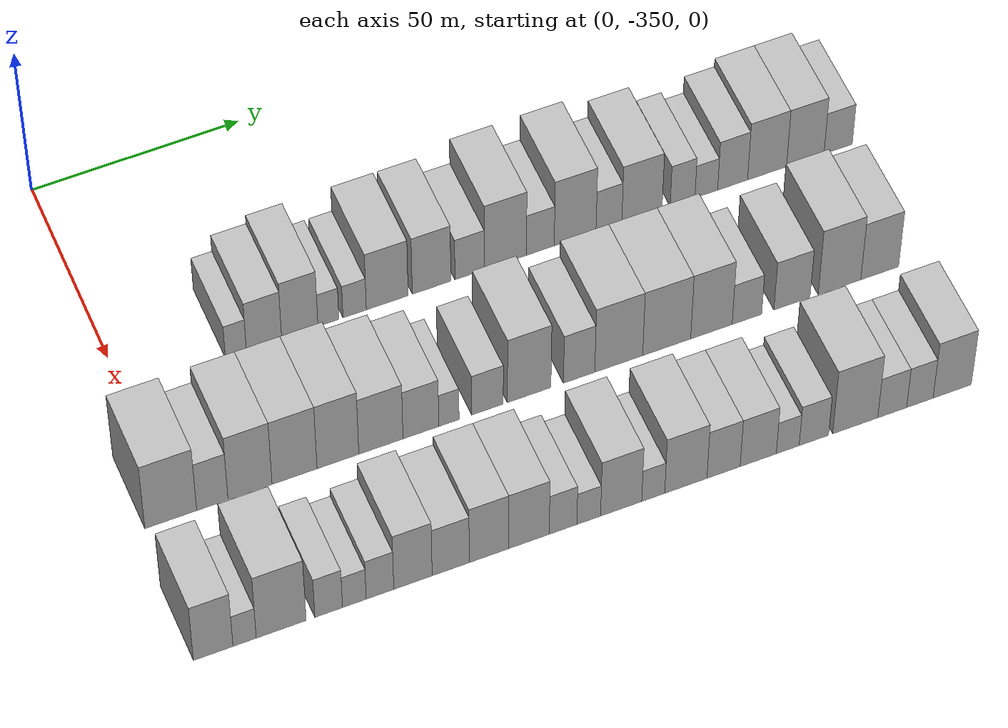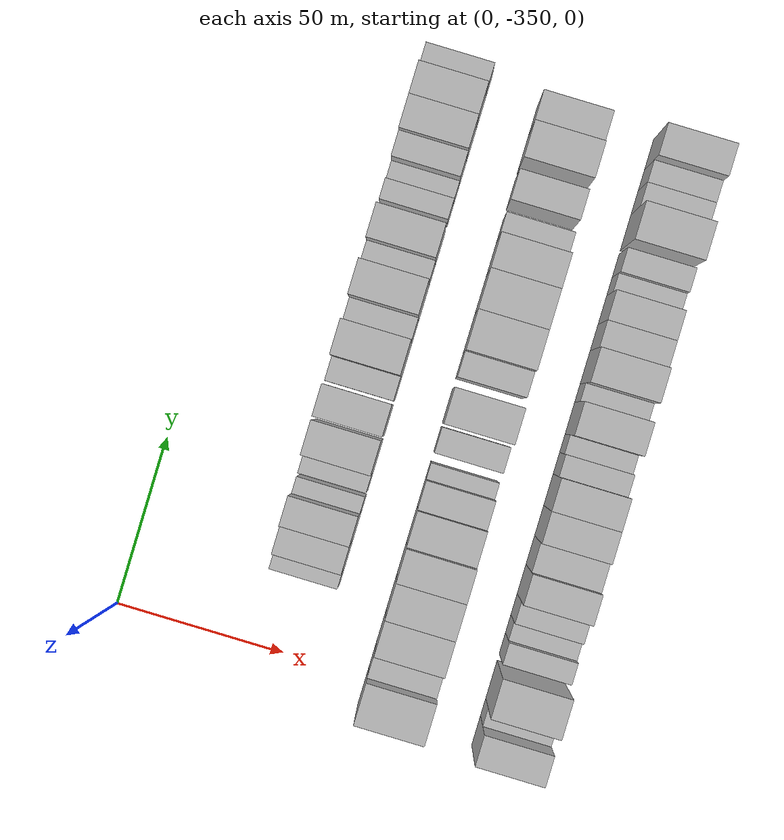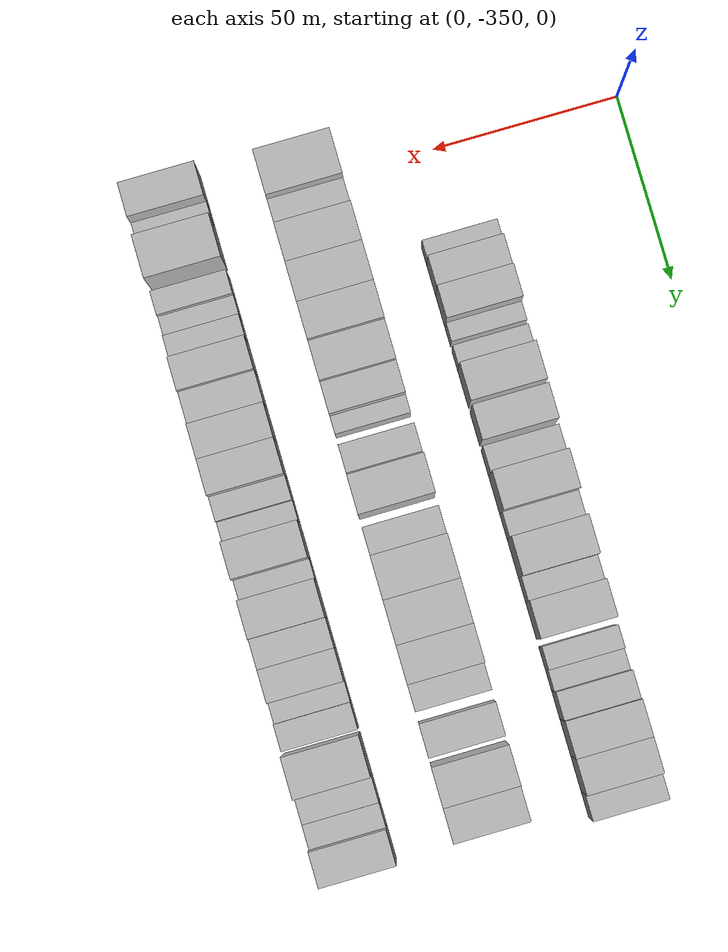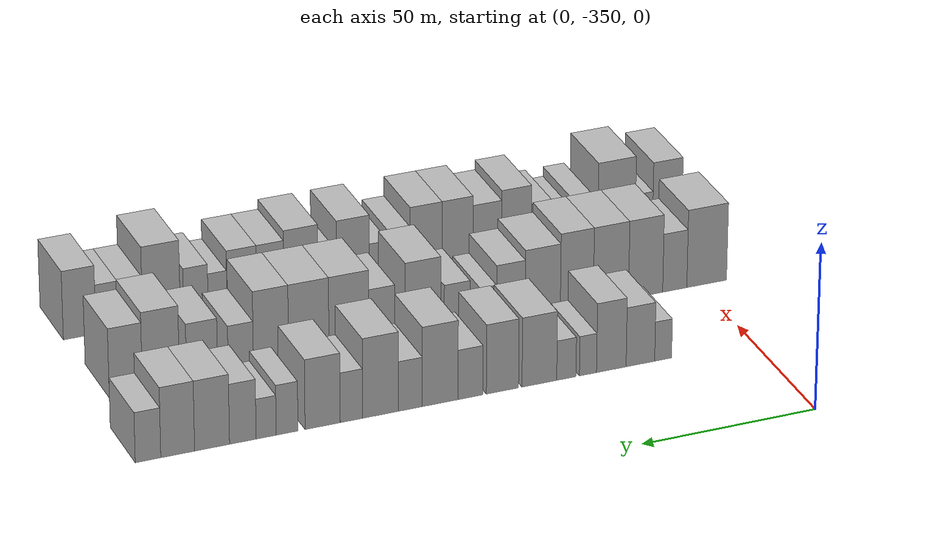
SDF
<sdf version="1.6">
 <world name="default">
  <model name="building_1">
   <static>1</static>
   <pose>50.0000 -323.5235 0 0.000000 0.000000 0.000000</pose>
   <link name="link">
    <pose>0 0 6.00 0 0 0</pose>
    <collision name="collision"><geometry><box><size>20.0000 4.9844 12.0000</size></box></geometry></collision>
    <visual name="visual">
     <cast_shadows>0</cast_shadows>
     <geometry><box><size>20.0000 4.9844 12.0000</size></box></geometry>
     <material>
      <script>
       <uri>model://HANNAS_wall/materials/scripts</uri>
       <uri>model://HANNAS_wall/materials/textures</uri>
       <name>vrc/HANNAS_wall</name>
      </script>
     </material>
    </visual>
   </link>
  </model>
  <model name="building_2">
   <static>1</static>
   <pose>50.0000 -316.8448 0 0.000000 0.000000 0.000000</pose>
   <link name="link">
    <pose>0 0 9.00 0 0 0</pose>
    <collision name="collision"><geometry><box><size>20.0000 8.3730 18.0000</size></box></geometry></collision>
    <visual name="visual">
     <cast_shadows>0</cast_shadows>
     <geometry><box><size>20.0000 8.3730 18.0000</size></box></geometry>
     <material>
      <script>
       <uri>model://HANNAS_wall/materials/scripts</uri>
       <uri>model://HANNAS_wall/materials/textures</uri>
       <name>vrc/HANNAS_wall</name>
      </script>
     </material>
    </visual>
   </link>
  </model>
  <model name="building_3">
   <static>1</static>
   <pose>50.0000 -308.3304 0 0.000000 0.000000 0.000000</pose>
   <link name="link">
    <pose>0 0 10.50 0 0 0</pose>
    <collision name="collision"><geometry><box><size>20.0000 8.6558 21.0000</size></box></geometry></collision>
    <visual name="visual">
     <cast_shadows>0</cast_shadows>
     <geometry><box><size>20.0000 8.6558 21.0000</size></box></geometry>
     <material>
      <script>
       <uri>model://HANNAS_wall/materials/scripts</uri>
       <uri>model://HANNAS_wall/materials/textures</uri>
       <name>vrc/HANNAS_wall</name>
      </script>
     </material>
    </visual>
   </link>
  </model>
  <model name="building_4">
   <static>1</static>
   <pose>50.0000 -301.5151 0 0.000000 0.000000 0.000000</pose>
   <link name="link">
    <pose>0 0 6.00 0 0 0</pose>
    <collision name="collision"><geometry><box><size>20.0000 4.9749 12.0000</size></box></geometry></collision>
    <visual name="visual">
     <cast_shadows>0</cast_shadows>
     <geometry><box><size>20.0000 4.9749 12.0000</size></box></geometry>
     <material>
      <script>
       <uri>model://HANNAS_wall/materials/scripts</uri>
       <uri>model://HANNAS_wall/materials/textures</uri>
       <name>vrc/HANNAS_wall</name>
      </script>
     </material>
    </visual>
   </link>
  </model>
  <model name="building_5">
   <static>1</static>
   <pose>50.0000 -295.2361 0 0.000000 0.000000 0.000000</pose>
   <link name="link">
    <pose>0 0 6.00 0 0 0</pose>
    <collision name="collision"><geometry><box><size>20.0000 5.5831 12.0000</size></box></geometry></collision>
    <visual name="visual">
     <cast_shadows>0</cast_shadows>
     <geometry><box><size>20.0000 5.5831 12.0000</size></box></geometry>
     <material>
      <script>
       <uri>model://HANNAS_wall/materials/scripts</uri>
       <uri>model://HANNAS_wall/materials/textures</uri>
       <name>vrc/HANNAS_wall</name>
      </script>
     </material>
    </visual>
   </link>
  </model>
  <model name="building_6">
   <static>1</static>
   <pose>50.0000 -287.4168 0 0.000000 0.000000 0.000000</pose>
   <link name="link">
    <pose>0 0 10.50 0 0 0</pose>
    <collision name="collision"><geometry><box><size>20.0000 10.0555 21.0000</size></box></geometry></collision>
    <visual name="visual">
     <cast_shadows>0</cast_shadows>
     <geometry><box><size>20.0000 10.0555 21.0000</size></box></geometry>
     <material>
      <script>
       <uri>model://HANNAS_wall/materials/scripts</uri>
       <uri>model://HANNAS_wall/materials/textures</uri>
       <name>vrc/HANNAS_wall</name>
      </script>
     </material>
    </visual>
   </link>
  </model>
  <model name="building_7">
   <static>1</static>
   <pose>50.0000 -276.7406 0 0.000000 0.000000 0.000000</pose>
   <link name="link">
    <pose>0 0 10.50 0 0 0</pose>
    <collision name="collision"><geometry><box><size>20.0000 9.2968 21.0000</size></box></geometry></collision>
    <visual name="visual">
     <cast_shadows>0</cast_shadows>
     <geometry><box><size>20.0000 9.2968 21.0000</size></box></geometry>
     <material>
      <script>
       <uri>model://HANNAS_wall/materials/scripts</uri>
       <uri>model://HANNAS_wall/materials/textures</uri>
       <name>vrc/HANNAS_wall</name>
      </script>
     </material>
    </visual>
   </link>
  </model>
  <model name="building_8">
   <static>1</static>
   <pose>50.0000 -267.5403 0 0.000000 0.000000 0.000000</pose>
   <link name="link">
    <pose>0 0 7.50 0 0 0</pose>
    <collision name="collision"><geometry><box><size>20.0000 7.1037 15.0000</size></box></geometry></collision>
    <visual name="visual">
     <cast_shadows>0</cast_shadows>
     <geometry><box><size>20.0000 7.1037 15.0000</size></box></geometry>
     <material>
      <script>
       <uri>model://HANNAS_wall/materials/scripts</uri>
       <uri>model://HANNAS_wall/materials/textures</uri>
       <name>vrc/HANNAS_wall</name>
      </script>
     </material>
    </visual>
   </link>
  </model>
  <model name="building_9">
   <static>1</static>
   <pose>50.0000 -258.8711 0 0.000000 0.000000 0.000000</pose>
   <link name="link">
    <pose>0 0 12.00 0 0 0</pose>
    <collision name="collision"><geometry><box><size>20.0000 10.2348 24.0000</size></box></geometry></collision>
    <visual name="visual">
     <cast_shadows>0</cast_shadows>
     <geometry><box><size>20.0000 10.2348 24.0000</size></box></geometry>
     <material>
      <script>
       <uri>model://HANNAS_wall/materials/scripts</uri>
       <uri>model://HANNAS_wall/materials/textures</uri>
       <name>vrc/HANNAS_wall</name>
      </script>
     </material>
    </visual>
   </link>
  </model>
  <model name="building_10">
   <static>1</static>
   <pose>50.0000 -250.3590 0 0.000000 0.000000 0.000000</pose>
   <link name="link">
    <pose>0 0 7.50 0 0 0</pose>
    <collision name="collision"><geometry><box><size>20.0000 6.7893 15.0000</size></box></geometry></collision>
    <visual name="visual">
     <cast_shadows>0</cast_shadows>
     <geometry><box><size>20.0000 6.7893 15.0000</size></box></geometry>
     <material>
      <script>
       <uri>model://HANNAS_wall/materials/scripts</uri>
       <uri>model://HANNAS_wall/materials/textures</uri>
       <name>vrc/HANNAS_wall</name>
      </script>
     </material>
    </visual>
   </link>
  </model>
  <model name="building_11">
   <static>1</static>
   <pose>50.0000 -241.8645 0 0.000000 0.000000 0.000000</pose>
   <link name="link">
    <pose>0 0 12.00 0 0 0</pose>
    <collision name="collision"><geometry><box><size>20.0000 10.1996 24.0000</size></box></geometry></collision>
    <visual name="visual">
     <cast_shadows>0</cast_shadows>
     <geometry><box><size>20.0000 10.1996 24.0000</size></box></geometry>
     <material>
      <script>
       <uri>model://HANNAS_wall/materials/scripts</uri>
       <uri>model://HANNAS_wall/materials/textures</uri>
       <name>vrc/HANNAS_wall</name>
      </script>
     </material>
    </visual>
   </link>
  </model>
  <model name="building_12">
   <static>1</static>
   <pose>50.0000 -233.6002 0 0.000000 0.000000 0.000000</pose>
   <link name="link">
    <pose>0 0 7.50 0 0 0</pose>
    <collision name="collision"><geometry><box><size>20.0000 6.3291 15.0000</size></box></geometry></collision>
    <visual name="visual">
     <cast_shadows>0</cast_shadows>
     <geometry><box><size>20.0000 6.3291 15.0000</size></box></geometry>
     <material>
      <script>
       <uri>model://HANNAS_wall/materials/scripts</uri>
       <uri>model://HANNAS_wall/materials/textures</uri>
       <name>vrc/HANNAS_wall</name>
      </script>
     </material>
    </visual>
   </link>
  </model>
  <model name="building_13">
   <static>1</static>
   <pose>50.0000 -225.4754 0 0.000000 0.000000 0.000000</pose>
   <link name="link">
    <pose>0 0 10.50 0 0 0</pose>
    <collision name="collision"><geometry><box><size>20.0000 9.9203 21.0000</size></box></geometry></collision>
    <visual name="visual">
     <cast_shadows>0</cast_shadows>
     <geometry><box><size>20.0000 9.9203 21.0000</size></box></geometry>
     <material>
      <script>
       <uri>model://HANNAS_wall/materials/scripts</uri>
       <uri>model://HANNAS_wall/materials/textures</uri>
       <name>vrc/HANNAS_wall</name>
      </script>
     </material>
    </visual>
   </link>
  </model>
  <model name="building_14">
   <static>1</static>
   <pose>50.0000 -215.4575 0 0.000000 0.000000 0.000000</pose>
   <link name="link">
    <pose>0 0 7.50 0 0 0</pose>
    <collision name="collision"><geometry><box><size>20.0000 6.1157 15.0000</size></box></geometry></collision>
    <visual name="visual">
     <cast_shadows>0</cast_shadows>
     <geometry><box><size>20.0000 6.1157 15.0000</size></box></geometry>
     <material>
      <script>
       <uri>model://HANNAS_wall/materials/scripts</uri>
       <uri>model://HANNAS_wall/materials/textures</uri>
       <name>vrc/HANNAS_wall</name>
      </script>
     </material>
    </visual>
   </link>
  </model>
  <model name="building_15">
   <static>1</static>
   <pose>50.0000 -209.5871 0 0.000000 0.000000 0.000000</pose>
   <link name="link">
    <pose>0 0 6.00 0 0 0</pose>
    <collision name="collision"><geometry><box><size>20.0000 5.6250 12.0000</size></box></geometry></collision>
    <visual name="visual">
     <cast_shadows>0</cast_shadows>
     <geometry><box><size>20.0000 5.6250 12.0000</size></box></geometry>
     <material>
      <script>
       <uri>model://HANNAS_wall/materials/scripts</uri>
       <uri>model://HANNAS_wall/materials/textures</uri>
       <name>vrc/HANNAS_wall</name>
      </script>
     </material>
    </visual>
   </link>
  </model>
  <model name="building_16">
   <static>1</static>
   <pose>50.0000 -203.0553 0 0.000000 0.000000 0.000000</pose>
   <link name="link">
    <pose>0 0 9.00 0 0 0</pose>
    <collision name="collision"><geometry><box><size>20.0000 7.4387 18.0000</size></box></geometry></collision>
    <visual name="visual">
     <cast_shadows>0</cast_shadows>
     <geometry><box><size>20.0000 7.4387 18.0000</size></box></geometry>
     <material>
      <script>
       <uri>model://HANNAS_wall/materials/scripts</uri>
       <uri>model://HANNAS_wall/materials/textures</uri>
       <name>vrc/HANNAS_wall</name>
      </script>
     </material>
    </visual>
   </link>
  </model>
  <model name="building_17">
   <static>1</static>
   <pose>50.0000 -194.4742 0 0.000000 0.000000 0.000000</pose>
   <link name="link">
    <pose>0 0 10.50 0 0 0</pose>
    <collision name="collision"><geometry><box><size>20.0000 9.7235 21.0000</size></box></geometry></collision>
    <visual name="visual">
     <cast_shadows>0</cast_shadows>
     <geometry><box><size>20.0000 9.7235 21.0000</size></box></geometry>
     <material>
      <script>
       <uri>model://HANNAS_wall/materials/scripts</uri>
       <uri>model://HANNAS_wall/materials/textures</uri>
       <name>vrc/HANNAS_wall</name>
      </script>
     </material>
    </visual>
   </link>
  </model>
  <model name="building_18">
   <static>1</static>
   <pose>50.0000 -184.9222 0 0.000000 0.000000 0.000000</pose>
   <link name="link">
    <pose>0 0 10.50 0 0 0</pose>
    <collision name="collision"><geometry><box><size>20.0000 9.3804 21.0000</size></box></geometry></collision>
    <visual name="visual">
     <cast_shadows>0</cast_shadows>
     <geometry><box><size>20.0000 9.3804 21.0000</size></box></geometry>
     <material>
      <script>
       <uri>model://HANNAS_wall/materials/scripts</uri>
       <uri>model://HANNAS_wall/materials/textures</uri>
       <name>vrc/HANNAS_wall</name>
      </script>
     </material>
    </visual>
   </link>
  </model>
  <model name="building_19">
   <static>1</static>
   <pose>50.0000 -176.6971 0 0.000000 0.000000 0.000000</pose>
   <link name="link">
    <pose>0 0 7.50 0 0 0</pose>
    <collision name="collision"><geometry><box><size>20.0000 7.0700 15.0000</size></box></geometry></collision>
    <visual name="visual">
     <cast_shadows>0</cast_shadows>
     <geometry><box><size>20.0000 7.0700 15.0000</size></box></geometry>
     <material>
      <script>
       <uri>model://HANNAS_wall/materials/scripts</uri>
       <uri>model://HANNAS_wall/materials/textures</uri>
       <name>vrc/HANNAS_wall</name>
      </script>
     </material>
    </visual>
   </link>
  </model>
  <model name="building_81">
   <static>1</static>
   <pose>85.0000 -352.0096 0 0.000000 0.000000 0.000000</pose>
   <link name="link">
    <pose>0 0 12.00 0 0 0</pose>
    <collision name="collision"><geometry><box><size>20.0000 11.9808 24.0000</size></box></geometry></collision>
    <visual name="visual">
     <cast_shadows>0</cast_shadows>
     <geometry><box><size>20.0000 11.9808 24.0000</size></box></geometry>
     <material>
      <script>
       <uri>model://HANNAS_wall/materials/scripts</uri>
       <uri>model://HANNAS_wall/materials/textures</uri>
       <name>vrc/HANNAS_wall</name>
      </script>
     </material>
    </visual>
   </link>
  </model>
  <model name="building_82">
   <static>1</static>
   <pose>85.0000 -342.3903 0 0.000000 0.000000 0.000000</pose>
   <link name="link">
    <pose>0 0 9.00 0 0 0</pose>
    <collision name="collision"><geometry><box><size>20.0000 7.2579 18.0000</size></box></geometry></collision>
    <visual name="visual">
     <cast_shadows>0</cast_shadows>
     <geometry><box><size>20.0000 7.2579 18.0000</size></box></geometry>
     <material>
      <script>
       <uri>model://HANNAS_wall/materials/scripts</uri>
       <uri>model://HANNAS_wall/materials/textures</uri>
       <name>vrc/HANNAS_wall</name>
      </script>
     </material>
    </visual>
   </link>
  </model>
  <model name="building_83">
   <static>1</static>
   <pose>85.0000 -333.6379 0 0.000000 0.000000 0.000000</pose>
   <link name="link">
    <pose>0 0 12.00 0 0 0</pose>
    <collision name="collision"><geometry><box><size>20.0000 10.2469 24.0000</size></box></geometry></collision>
    <visual name="visual">
     <cast_shadows>0</cast_shadows>
     <geometry><box><size>20.0000 10.2469 24.0000</size></box></geometry>
     <material>
      <script>
       <uri>model://HANNAS_wall/materials/scripts</uri>
       <uri>model://HANNAS_wall/materials/textures</uri>
       <name>vrc/HANNAS_wall</name>
      </script>
     </material>
    </visual>
   </link>
  </model>
  <model name="building_84">
   <static>1</static>
   <pose>85.0000 -323.2649 0 0.000000 0.000000 0.000000</pose>
   <link name="link">
    <pose>0 0 12.00 0 0 0</pose>
    <collision name="collision"><geometry><box><size>20.0000 10.4991 24.0000</size></box></geometry></collision>
    <visual name="visual">
     <cast_shadows>0</cast_shadows>
     <geometry><box><size>20.0000 10.4991 24.0000</size></box></geometry>
     <material>
      <script>
       <uri>model://HANNAS_wall/materials/scripts</uri>
       <uri>model://HANNAS_wall/materials/textures</uri>
       <name>vrc/HANNAS_wall</name>
      </script>
     </material>
    </visual>
   </link>
  </model>
  <model name="building_85">
   <static>1</static>
   <pose>85.0000 -313.1214 0 0.000000 0.000000 0.000000</pose>
   <link name="link">
    <pose>0 0 12.00 0 0 0</pose>
    <collision name="collision"><geometry><box><size>20.0000 9.7878 24.0000</size></box></geometry></collision>
    <visual name="visual">
     <cast_shadows>0</cast_shadows>
     <geometry><box><size>20.0000 9.7878 24.0000</size></box></geometry>
     <material>
      <script>
       <uri>model://HANNAS_wall/materials/scripts</uri>
       <uri>model://HANNAS_wall/materials/textures</uri>
       <name>vrc/HANNAS_wall</name>
      </script>
     </material>
    </visual>
   </link>
  </model>
  <model name="building_86">
   <static>1</static>
   <pose>85.0000 -303.0180 0 0.000000 0.000000 0.000000</pose>
   <link name="link">
    <pose>0 0 10.50 0 0 0</pose>
    <collision name="collision"><geometry><box><size>20.0000 10.4191 21.0000</size></box></geometry></collision>
    <visual name="visual">
     <cast_shadows>0</cast_shadows>
     <geometry><box><size>20.0000 10.4191 21.0000</size></box></geometry>
     <material>
      <script>
       <uri>model://HANNAS_wall/materials/scripts</uri>
       <uri>model://HANNAS_wall/materials/textures</uri>
       <name>vrc/HANNAS_wall</name>
      </script>
     </material>
    </visual>
   </link>
  </model>
  <model name="building_87">
   <static>1</static>
   <pose>85.0000 -293.5807 0 0.000000 0.000000 0.000000</pose>
   <link name="link">
    <pose>0 0 9.00 0 0 0</pose>
    <collision name="collision"><geometry><box><size>20.0000 8.4555 18.0000</size></box></geometry></collision>
    <visual name="visual">
     <cast_shadows>0</cast_shadows>
     <geometry><box><size>20.0000 8.4555 18.0000</size></box></geometry>
     <material>
      <script>
       <uri>model://HANNAS_wall/materials/scripts</uri>
       <uri>model://HANNAS_wall/materials/textures</uri>
       <name>vrc/HANNAS_wall</name>
      </script>
     </material>
    </visual>
   </link>
  </model>
  <model name="building_88">
   <static>1</static>
   <pose>85.0000 -286.9483 0 0.000000 0.000000 0.000000</pose>
   <link name="link">
    <pose>0 0 6.00 0 0 0</pose>
    <collision name="collision"><geometry><box><size>20.0000 4.8094 12.0000</size></box></geometry></collision>
    <visual name="visual">
     <cast_shadows>0</cast_shadows>
     <geometry><box><size>20.0000 4.8094 12.0000</size></box></geometry>
     <material>
      <script>
       <uri>model://HANNAS_wall/materials/scripts</uri>
       <uri>model://HANNAS_wall/materials/textures</uri>
       <name>vrc/HANNAS_wall</name>
      </script>
     </material>
    </visual>
   </link>
  </model>
  <model name="building_89">
   <static>1</static>
   <pose>85.0000 -277.7971 0 0.000000 0.000000 0.000000</pose>
   <link name="link">
    <pose>0 0 7.50 0 0 0</pose>
    <collision name="collision"><geometry><box><size>20.0000 7.4930 15.0000</size></box></geometry></collision>
    <visual name="visual">
     <cast_shadows>0</cast_shadows>
     <geometry><box><size>20.0000 7.4930 15.0000</size></box></geometry>
     <material>
      <script>
       <uri>model://HANNAS_wall/materials/scripts</uri>
       <uri>model://HANNAS_wall/materials/textures</uri>
       <name>vrc/HANNAS_wall</name>
      </script>
     </material>
    </visual>
   </link>
  </model>
  <model name="building_90">
   <static>1</static>
   <pose>85.0000 -267.8582 0 0.000000 0.000000 0.000000</pose>
   <link name="link">
    <pose>0 0 12.00 0 0 0</pose>
    <collision name="collision"><geometry><box><size>20.0000 10.3849 24.0000</size></box></geometry></collision>
    <visual name="visual">
     <cast_shadows>0</cast_shadows>
     <geometry><box><size>20.0000 10.3849 24.0000</size></box></geometry>
     <material>
      <script>
       <uri>model://HANNAS_wall/materials/scripts</uri>
       <uri>model://HANNAS_wall/materials/textures</uri>
       <name>vrc/HANNAS_wall</name>
      </script>
     </material>
    </visual>
   </link>
  </model>
  <model name="building_91">
   <static>1</static>
   <pose>85.0000 -255.9098 0 0.000000 0.000000 0.000000</pose>
   <link name="link">
    <pose>0 0 9.00 0 0 0</pose>
    <collision name="collision"><geometry><box><size>20.0000 7.5119 18.0000</size></box></geometry></collision>
    <visual name="visual">
     <cast_shadows>0</cast_shadows>
     <geometry><box><size>20.0000 7.5119 18.0000</size></box></geometry>
     <material>
      <script>
       <uri>model://HANNAS_wall/materials/scripts</uri>
       <uri>model://HANNAS_wall/materials/textures</uri>
       <name>vrc/HANNAS_wall</name>
      </script>
     </material>
    </visual>
   </link>
  </model>
  <model name="building_92">
   <static>1</static>
   <pose>85.0000 -246.3797 0 0.000000 0.000000 0.000000</pose>
   <link name="link">
    <pose>0 0 12.00 0 0 0</pose>
    <collision name="collision"><geometry><box><size>20.0000 11.5483 24.0000</size></box></geometry></collision>
    <visual name="visual">
     <cast_shadows>0</cast_shadows>
     <geometry><box><size>20.0000 11.5483 24.0000</size></box></geometry>
     <material>
      <script>
       <uri>model://HANNAS_wall/materials/scripts</uri>
       <uri>model://HANNAS_wall/materials/textures</uri>
       <name>vrc/HANNAS_wall</name>
      </script>
     </material>
    </visual>
   </link>
  </model>
  <model name="building_93">
   <static>1</static>
   <pose>85.0000 -234.7971 0 0.000000 0.000000 0.000000</pose>
   <link name="link">
    <pose>0 0 12.00 0 0 0</pose>
    <collision name="collision"><geometry><box><size>20.0000 11.6169 24.0000</size></box></geometry></collision>
    <visual name="visual">
     <cast_shadows>0</cast_shadows>
     <geometry><box><size>20.0000 11.6169 24.0000</size></box></geometry>
     <material>
      <script>
       <uri>model://HANNAS_wall/materials/scripts</uri>
       <uri>model://HANNAS_wall/materials/textures</uri>
       <name>vrc/HANNAS_wall</name>
      </script>
     </material>
    </visual>
   </link>
  </model>
  <model name="building_94">
   <static>1</static>
   <pose>85.0000 -223.9511 0 0.000000 0.000000 0.000000</pose>
   <link name="link">
    <pose>0 0 12.00 0 0 0</pose>
    <collision name="collision"><geometry><box><size>20.0000 10.0751 24.0000</size></box></geometry></collision>
    <visual name="visual">
     <cast_shadows>0</cast_shadows>
     <geometry><box><size>20.0000 10.0751 24.0000</size></box></geometry>
     <material>
      <script>
       <uri>model://HANNAS_wall/materials/scripts</uri>
       <uri>model://HANNAS_wall/materials/textures</uri>
       <name>vrc/HANNAS_wall</name>
      </script>
     </material>
    </visual>
   </link>
  </model>
  <model name="building_95">
   <static>1</static>
   <pose>85.0000 -215.3108 0 0.000000 0.000000 0.000000</pose>
   <link name="link">
    <pose>0 0 7.50 0 0 0</pose>
    <collision name="collision"><geometry><box><size>20.0000 7.2054 15.0000</size></box></geometry></collision>
    <visual name="visual">
     <cast_shadows>0</cast_shadows>
     <geometry><box><size>20.0000 7.2054 15.0000</size></box></geometry>
     <material>
      <script>
       <uri>model://HANNAS_wall/materials/scripts</uri>
       <uri>model://HANNAS_wall/materials/textures</uri>
       <name>vrc/HANNAS_wall</name>
      </script>
     </material>
    </visual>
   </link>
  </model>
  <model name="building_96">
   <static>1</static>
   <pose>85.0000 -204.2870 0 0.000000 0.000000 0.000000</pose>
   <link name="link">
    <pose>0 0 9.00 0 0 0</pose>
    <collision name="collision"><geometry><box><size>20.0000 8.8422 18.0000</size></box></geometry></collision>
    <visual name="visual">
     <cast_shadows>0</cast_shadows>
     <geometry><box><size>20.0000 8.8422 18.0000</size></box></geometry>
     <material>
      <script>
       <uri>model://HANNAS_wall/materials/scripts</uri>
       <uri>model://HANNAS_wall/materials/textures</uri>
       <name>vrc/HANNAS_wall</name>
      </script>
     </material>
    </visual>
   </link>
  </model>
  <model name="building_97">
   <static>1</static>
   <pose>85.0000 -192.6237 0 0.000000 0.000000 0.000000</pose>
   <link name="link">
    <pose>0 0 12.00 0 0 0</pose>
    <collision name="collision"><geometry><box><size>20.0000 10.4843 24.0000</size></box></geometry></collision>
    <visual name="visual">
     <cast_shadows>0</cast_shadows>
     <geometry><box><size>20.0000 10.4843 24.0000</size></box></geometry>
     <material>
      <script>
       <uri>model://HANNAS_wall/materials/scripts</uri>
       <uri>model://HANNAS_wall/materials/textures</uri>
       <name>vrc/HANNAS_wall</name>
      </script>
     </material>
    </visual>
   </link>
  </model>
  <model name="building_98">
   <static>1</static>
   <pose>85.0000 -182.7194 0 0.000000 0.000000 0.000000</pose>
   <link name="link">
    <pose>0 0 10.50 0 0 0</pose>
    <collision name="collision"><geometry><box><size>20.0000 9.3244 21.0000</size></box></geometry></collision>
    <visual name="visual">
     <cast_shadows>0</cast_shadows>
     <geometry><box><size>20.0000 9.3244 21.0000</size></box></geometry>
     <material>
      <script>
       <uri>model://HANNAS_wall/materials/scripts</uri>
       <uri>model://HANNAS_wall/materials/textures</uri>
       <name>vrc/HANNAS_wall</name>
      </script>
     </material>
    </visual>
   </link>
  </model>
  <model name="building_159">
   <static>1</static>
   <pose>120.0000 -355.5031 0 0.000000 0.000000 0.000000</pose>
   <link name="link">
    <pose>0 0 10.50 0 0 0</pose>
    <collision name="collision"><geometry><box><size>20.0000 8.9939 21.0000</size></box></geometry></collision>
    <visual name="visual">
     <cast_shadows>0</cast_shadows>
     <geometry><box><size>20.0000 8.9939 21.0000</size></box></geometry>
     <material>
      <script>
       <uri>model://HANNAS_wall/materials/scripts</uri>
       <uri>model://HANNAS_wall/materials/textures</uri>
       <name>vrc/HANNAS_wall</name>
      </script>
     </material>
    </visual>
   </link>
  </model>
  <model name="building_160">
   <static>1</static>
   <pose>120.0000 -348.3566 0 0.000000 0.000000 0.000000</pose>
   <link name="link">
    <pose>0 0 6.00 0 0 0</pose>
    <collision name="collision"><geometry><box><size>20.0000 5.2991 12.0000</size></box></geometry></collision>
    <visual name="visual">
     <cast_shadows>0</cast_shadows>
     <geometry><box><size>20.0000 5.2991 12.0000</size></box></geometry>
     <material>
      <script>
       <uri>model://HANNAS_wall/materials/scripts</uri>
       <uri>model://HANNAS_wall/materials/textures</uri>
       <name>vrc/HANNAS_wall</name>
      </script>
     </material>
    </visual>
   </link>
  </model>
  <model name="building_161">
   <static>1</static>
   <pose>120.0000 -340.0030 0 0.000000 0.000000 0.000000</pose>
   <link name="link">
    <pose>0 0 12.00 0 0 0</pose>
    <collision name="collision"><geometry><box><size>20.0000 11.4079 24.0000</size></box></geometry></collision>
    <visual name="visual">
     <cast_shadows>0</cast_shadows>
     <geometry><box><size>20.0000 11.4079 24.0000</size></box></geometry>
     <material>
      <script>
       <uri>model://HANNAS_wall/materials/scripts</uri>
       <uri>model://HANNAS_wall/materials/textures</uri>
       <name>vrc/HANNAS_wall</name>
      </script>
     </material>
    </visual>
   </link>
  </model>
  <model name="building_162">
   <static>1</static>
   <pose>120.0000 -329.1275 0 0.000000 0.000000 0.000000</pose>
   <link name="link">
    <pose>0 0 7.50 0 0 0</pose>
    <collision name="collision"><geometry><box><size>20.0000 6.3432 15.0000</size></box></geometry></collision>
    <visual name="visual">
     <cast_shadows>0</cast_shadows>
     <geometry><box><size>20.0000 6.3432 15.0000</size></box></geometry>
     <material>
      <script>
       <uri>model://HANNAS_wall/materials/scripts</uri>
       <uri>model://HANNAS_wall/materials/textures</uri>
       <name>vrc/HANNAS_wall</name>
      </script>
     </material>
    </visual>
   </link>
  </model>
  <model name="building_163">
   <static>1</static>
   <pose>120.0000 -323.2334 0 0.000000 0.000000 0.000000</pose>
   <link name="link">
    <pose>0 0 6.00 0 0 0</pose>
    <collision name="collision"><geometry><box><size>20.0000 5.4451 12.0000</size></box></geometry></collision>
    <visual name="visual">
     <cast_shadows>0</cast_shadows>
     <geometry><box><size>20.0000 5.4451 12.0000</size></box></geometry>
     <material>
      <script>
       <uri>model://HANNAS_wall/materials/scripts</uri>
       <uri>model://HANNAS_wall/materials/textures</uri>
       <name>vrc/HANNAS_wall</name>
      </script>
     </material>
    </visual>
   </link>
  </model>
  <model name="building_164">
   <static>1</static>
   <pose>120.0000 -317.3218 0 0.000000 0.000000 0.000000</pose>
   <link name="link">
    <pose>0 0 7.50 0 0 0</pose>
    <collision name="collision"><geometry><box><size>20.0000 6.3780 15.0000</size></box></geometry></collision>
    <visual name="visual">
     <cast_shadows>0</cast_shadows>
     <geometry><box><size>20.0000 6.3780 15.0000</size></box></geometry>
     <material>
      <script>
       <uri>model://HANNAS_wall/materials/scripts</uri>
       <uri>model://HANNAS_wall/materials/textures</uri>
       <name>vrc/HANNAS_wall</name>
      </script>
     </material>
    </visual>
   </link>
  </model>
  <model name="building_165">
   <static>1</static>
   <pose>120.0000 -309.6915 0 0.000000 0.000000 0.000000</pose>
   <link name="link">
    <pose>0 0 10.50 0 0 0</pose>
    <collision name="collision"><geometry><box><size>20.0000 8.8826 21.0000</size></box></geometry></collision>
    <visual name="visual">
     <cast_shadows>0</cast_shadows>
     <geometry><box><size>20.0000 8.8826 21.0000</size></box></geometry>
     <material>
      <script>
       <uri>model://HANNAS_wall/materials/scripts</uri>
       <uri>model://HANNAS_wall/materials/textures</uri>
       <name>vrc/HANNAS_wall</name>
      </script>
     </material>
    </visual>
   </link>
  </model>
  <model name="building_166">
   <static>1</static>
   <pose>120.0000 -300.9372 0 0.000000 0.000000 0.000000</pose>
   <link name="link">
    <pose>0 0 9.00 0 0 0</pose>
    <collision name="collision"><geometry><box><size>20.0000 8.6261 18.0000</size></box></geometry></collision>
    <visual name="visual">
     <cast_shadows>0</cast_shadows>
     <geometry><box><size>20.0000 8.6261 18.0000</size></box></geometry>
     <material>
      <script>
       <uri>model://HANNAS_wall/materials/scripts</uri>
       <uri>model://HANNAS_wall/materials/textures</uri>
       <name>vrc/HANNAS_wall</name>
      </script>
     </material>
    </visual>
   </link>
  </model>
  <model name="building_167">
   <static>1</static>
   <pose>120.0000 -292.0225 0 0.000000 0.000000 0.000000</pose>
   <link name="link">
    <pose>0 0 10.50 0 0 0</pose>
    <collision name="collision"><geometry><box><size>20.0000 9.2033 21.0000</size></box></geometry></collision>
    <visual name="visual">
     <cast_shadows>0</cast_shadows>
     <geometry><box><size>20.0000 9.2033 21.0000</size></box></geometry>
     <material>
      <script>
       <uri>model://HANNAS_wall/materials/scripts</uri>
       <uri>model://HANNAS_wall/materials/textures</uri>
       <name>vrc/HANNAS_wall</name>
      </script>
     </material>
    </visual>
   </link>
  </model>
  <model name="building_168">
   <static>1</static>
   <pose>120.0000 -282.6849 0 0.000000 0.000000 0.000000</pose>
   <link name="link">
    <pose>0 0 10.50 0 0 0</pose>
    <collision name="collision"><geometry><box><size>20.0000 9.4720 21.0000</size></box></geometry></collision>
    <visual name="visual">
     <cast_shadows>0</cast_shadows>
     <geometry><box><size>20.0000 9.4720 21.0000</size></box></geometry>
     <material>
      <script>
       <uri>model://HANNAS_wall/materials/scripts</uri>
       <uri>model://HANNAS_wall/materials/textures</uri>
       <name>vrc/HANNAS_wall</name>
      </script>
     </material>
    </visual>
   </link>
  </model>
  <model name="building_169">
   <static>1</static>
   <pose>120.0000 -274.6993 0 0.000000 0.000000 0.000000</pose>
   <link name="link">
    <pose>0 0 7.50 0 0 0</pose>
    <collision name="collision"><geometry><box><size>20.0000 6.4993 15.0000</size></box></geometry></collision>
    <visual name="visual">
     <cast_shadows>0</cast_shadows>
     <geometry><box><size>20.0000 6.4993 15.0000</size></box></geometry>
     <material>
      <script>
       <uri>model://HANNAS_wall/materials/scripts</uri>
       <uri>model://HANNAS_wall/materials/textures</uri>
       <name>vrc/HANNAS_wall</name>
      </script>
     </material>
    </visual>
   </link>
  </model>
  <model name="building_170">
   <static>1</static>
   <pose>120.0000 -268.6656 0 0.000000 0.000000 0.000000</pose>
   <link name="link">
    <pose>0 0 6.00 0 0 0</pose>
    <collision name="collision"><geometry><box><size>20.0000 5.5680 12.0000</size></box></geometry></collision>
    <visual name="visual">
     <cast_shadows>0</cast_shadows>
     <geometry><box><size>20.0000 5.5680 12.0000</size></box></geometry>
     <material>
      <script>
       <uri>model://HANNAS_wall/materials/scripts</uri>
       <uri>model://HANNAS_wall/materials/textures</uri>
       <name>vrc/HANNAS_wall</name>
      </script>
     </material>
    </visual>
   </link>
  </model>
  <model name="building_171">
   <static>1</static>
   <pose>120.0000 -261.0204 0 0.000000 0.000000 0.000000</pose>
   <link name="link">
    <pose>0 0 10.50 0 0 0</pose>
    <collision name="collision"><geometry><box><size>20.0000 9.7225 21.0000</size></box></geometry></collision>
    <visual name="visual">
     <cast_shadows>0</cast_shadows>
     <geometry><box><size>20.0000 9.7225 21.0000</size></box></geometry>
     <material>
      <script>
       <uri>model://HANNAS_wall/materials/scripts</uri>
       <uri>model://HANNAS_wall/materials/textures</uri>
       <name>vrc/HANNAS_wall</name>
      </script>
     </material>
    </visual>
   </link>
  </model>
  <model name="building_172">
   <static>1</static>
   <pose>120.0000 -253.4391 0 0.000000 0.000000 0.000000</pose>
   <link name="link">
    <pose>0 0 6.00 0 0 0</pose>
    <collision name="collision"><geometry><box><size>20.0000 5.4401 12.0000</size></box></geometry></collision>
    <visual name="visual">
     <cast_shadows>0</cast_shadows>
     <geometry><box><size>20.0000 5.4401 12.0000</size></box></geometry>
     <material>
      <script>
       <uri>model://HANNAS_wall/materials/scripts</uri>
       <uri>model://HANNAS_wall/materials/textures</uri>
       <name>vrc/HANNAS_wall</name>
      </script>
     </material>
    </visual>
   </link>
  </model>
  <model name="building_173">
   <static>1</static>
   <pose>120.0000 -245.6971 0 0.000000 0.000000 0.000000</pose>
   <link name="link">
    <pose>0 0 10.50 0 0 0</pose>
    <collision name="collision"><geometry><box><size>20.0000 10.0440 21.0000</size></box></geometry></collision>
    <visual name="visual">
     <cast_shadows>0</cast_shadows>
     <geometry><box><size>20.0000 10.0440 21.0000</size></box></geometry>
     <material>
      <script>
       <uri>model://HANNAS_wall/materials/scripts</uri>
       <uri>model://HANNAS_wall/materials/textures</uri>
       <name>vrc/HANNAS_wall</name>
      </script>
     </material>
    </visual>
   </link>
  </model>
  <model name="building_174">
   <static>1</static>
   <pose>120.0000 -236.7225 0 0.000000 0.000000 0.000000</pose>
   <link name="link">
    <pose>0 0 9.00 0 0 0</pose>
    <collision name="collision"><geometry><box><size>20.0000 7.9052 18.0000</size></box></geometry></collision>
    <visual name="visual">
     <cast_shadows>0</cast_shadows>
     <geometry><box><size>20.0000 7.9052 18.0000</size></box></geometry>
     <material>
      <script>
       <uri>model://HANNAS_wall/materials/scripts</uri>
       <uri>model://HANNAS_wall/materials/textures</uri>
       <name>vrc/HANNAS_wall</name>
      </script>
     </material>
    </visual>
   </link>
  </model>
  <model name="building_175">
   <static>1</static>
   <pose>120.0000 -228.4332 0 0.000000 0.000000 0.000000</pose>
   <link name="link">
    <pose>0 0 9.00 0 0 0</pose>
    <collision name="collision"><geometry><box><size>20.0000 8.6735 18.0000</size></box></geometry></collision>
    <visual name="visual">
     <cast_shadows>0</cast_shadows>
     <geometry><box><size>20.0000 8.6735 18.0000</size></box></geometry>
     <material>
      <script>
       <uri>model://HANNAS_wall/materials/scripts</uri>
       <uri>model://HANNAS_wall/materials/textures</uri>
       <name>vrc/HANNAS_wall</name>
      </script>
     </material>
    </visual>
   </link>
  </model>
  <model name="building_176">
   <static>1</static>
   <pose>120.0000 -221.3525 0 0.000000 0.000000 0.000000</pose>
   <link name="link">
    <pose>0 0 6.00 0 0 0</pose>
    <collision name="collision"><geometry><box><size>20.0000 5.4878 12.0000</size></box></geometry></collision>
    <visual name="visual">
     <cast_shadows>0</cast_shadows>
     <geometry><box><size>20.0000 5.4878 12.0000</size></box></geometry>
     <material>
      <script>
       <uri>model://HANNAS_wall/materials/scripts</uri>
       <uri>model://HANNAS_wall/materials/textures</uri>
       <name>vrc/HANNAS_wall</name>
      </script>
     </material>
    </visual>
   </link>
  </model>
  <model name="building_177">
   <static>1</static>
   <pose>120.0000 -215.0718 0 0.000000 0.000000 0.000000</pose>
   <link name="link">
    <pose>0 0 7.50 0 0 0</pose>
    <collision name="collision"><geometry><box><size>20.0000 7.0736 15.0000</size></box></geometry></collision>
    <visual name="visual">
     <cast_shadows>0</cast_shadows>
     <geometry><box><size>20.0000 7.0736 15.0000</size></box></geometry>
     <material>
      <script>
       <uri>model://HANNAS_wall/materials/scripts</uri>
       <uri>model://HANNAS_wall/materials/textures</uri>
       <name>vrc/HANNAS_wall</name>
      </script>
     </material>
    </visual>
   </link>
  </model>
  <model name="building_178">
   <static>1</static>
   <pose>120.0000 -205.0907 0 0.000000 0.000000 0.000000</pose>
   <link name="link">
    <pose>0 0 12.00 0 0 0</pose>
    <collision name="collision"><geometry><box><size>20.0000 10.8887 24.0000</size></box></geometry></collision>
    <visual name="visual">
     <cast_shadows>0</cast_shadows>
     <geometry><box><size>20.0000 10.8887 24.0000</size></box></geometry>
     <material>
      <script>
       <uri>model://HANNAS_wall/materials/scripts</uri>
       <uri>model://HANNAS_wall/materials/textures</uri>
       <name>vrc/HANNAS_wall</name>
      </script>
     </material>
    </visual>
   </link>
  </model>
  <model name="building_179">
   <static>1</static>
   <pose>120.0000 -196.1487 0 0.000000 0.000000 0.000000</pose>
   <link name="link">
    <pose>0 0 7.50 0 0 0</pose>
    <collision name="collision"><geometry><box><size>20.0000 6.9953 15.0000</size></box></geometry></collision>
    <visual name="visual">
     <cast_shadows>0</cast_shadows>
     <geometry><box><size>20.0000 6.9953 15.0000</size></box></geometry>
     <material>
      <script>
       <uri>model://HANNAS_wall/materials/scripts</uri>
       <uri>model://HANNAS_wall/materials/textures</uri>
       <name>vrc/HANNAS_wall</name>
      </script>
     </material>
    </visual>
   </link>
  </model>
  <model name="building_180">
   <static>1</static>
   <pose>120.0000 -189.4409 0 0.000000 0.000000 0.000000</pose>
   <link name="link">
    <pose>0 0 7.50 0 0 0</pose>
    <collision name="collision"><geometry><box><size>20.0000 6.4201 15.0000</size></box></geometry></collision>
    <visual name="visual">
     <cast_shadows>0</cast_shadows>
     <geometry><box><size>20.0000 6.4201 15.0000</size></box></geometry>
     <material>
      <script>
       <uri>model://HANNAS_wall/materials/scripts</uri>
       <uri>model://HANNAS_wall/materials/textures</uri>
       <name>vrc/HANNAS_wall</name>
      </script>
     </material>
    </visual>
   </link>
  </model>
  <model name="building_181">
   <static>1</static>
   <pose>120.0000 -181.5747 0 0.000000 0.000000 0.000000</pose>
   <link name="link">
    <pose>0 0 10.50 0 0 0</pose>
    <collision name="collision"><geometry><box><size>20.0000 9.3123 21.0000</size></box></geometry></collision>
    <visual name="visual">
     <cast_shadows>0</cast_shadows>
     <geometry><box><size>20.0000 9.3123 21.0000</size></box></geometry>
     <material>
      <script>
       <uri>model://HANNAS_wall/materials/scripts</uri>
       <uri>model://HANNAS_wall/materials/textures</uri>
       <name>vrc/HANNAS_wall</name>
      </script>
     </material>
    </visual>
   </link>
  </model>
 </world>
</sdf>
